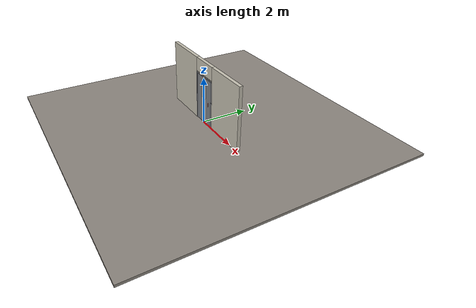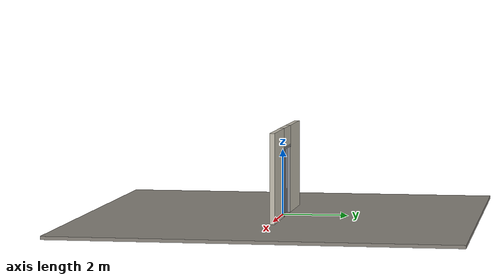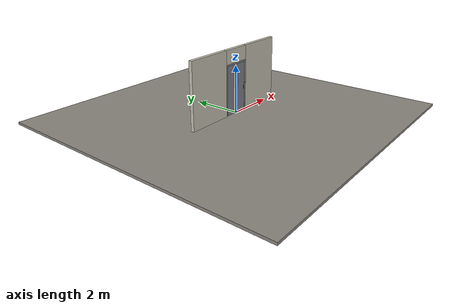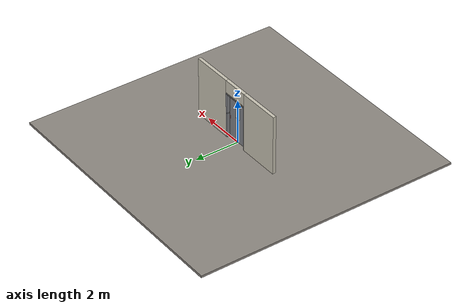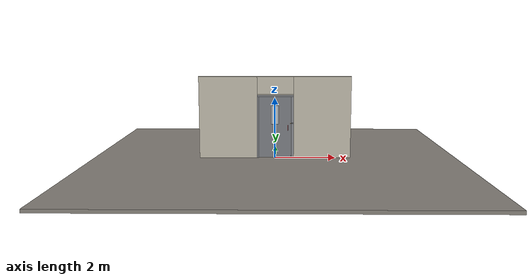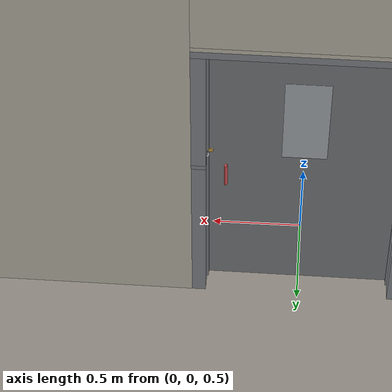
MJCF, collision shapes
<?xml version="1.0" ?>
<mujoco model="db0922_swing_single_full">
  <compiler angle="radian" meshdir="../../hardware" texturedir="../../textures" autolimits="true" inertiafromgeom="false"/>
  <option timestep="0.002" integrator="implicitfast" cone="elliptic" impratio="10" noslip_iterations="3">
    <flag multiccd="enable"/>
  </option>
  <size memory="16M"/>
  <default>
    <geom condim="4" solref="0.005 1" solimp="0.95 0.99 0.001"/>
    <joint solreflimit="0.005 1" solimplimit="0.95 0.99 0.001"/>
    <tendon solreflimit="0.005 1"/>
    <equality solref="0.002 1"/>
  </default>
  <visual>
    <headlight ambient="0.4 0.4 0.4" diffuse="0.7 0.7 0.7" specular="0.2 0.2 0.2"/>
    <quality shadowsize="4096"/>
    <map znear="0.01" zfar="60"/>
  </visual>
  <asset>
    <mesh name="cyl_face_e9e5036966" file="cyl_face_e9e5036966.obj"/>
    <mesh name="hinge_ad5cafba81" file="hinge_ad5cafba81.obj"/>
    <mesh name="hinge_jamb_9cff33df86" file="hinge_jamb_9cff33df86.obj"/>
    <mesh name="pull_1e5d69a91a" file="pull_1e5d69a91a.obj"/>
    <material name="mat_floor" rgba="0.55 0.53 0.5 1" specular="0.2" shininess="0.15" reflectance="0"/>
    <material name="mat_wall" rgba="0.78 0.76 0.7 1" specular="0.2" shininess="0.1" reflectance="0"/>
    <material name="mat_leaf" rgba="0.5 0.51 0.53 1" specular="0.23" shininess="0.4" reflectance="0.02"/>
    <material name="mat_glass" rgba="0.9 0.93 0.95 0.6" specular="0.2" shininess="0.5" reflectance="0.1"/>
    <material name="mat_hinge" rgba="0.65 0.66 0.68 1" specular="0.74" shininess="0.5" reflectance="0.36"/>
    <material name="mat_op_stainless" rgba="0.75 0.76 0.77 1" specular="0.8" shininess="0.65" reflectance="0.4"/>
    <material name="mat_deadbolt" rgba="0.85 0.66 0.3 1" specular="0.8" shininess="0.75" reflectance="0.4"/>
    <material name="mat_frame" rgba="0.55 0.56 0.58 1" specular="0.8" shininess="0.55" reflectance="0.4"/>
    <texture name="skybox" type="skybox" builtin="gradient" rgb1="0.6 0.7 0.85" rgb2="0.9 0.92 0.95" width="256" height="256"/>
  </asset>
  <worldbody>
    <light name="sun" pos="1.5 -2.5 4" dir="-0.3 0.5 -0.8" directional="true" diffuse="0.8 0.8 0.8" specular="0.3 0.3 0.3" castshadow="true"/>
    <light name="fill" pos="-1.5 2.5 3" dir="0.3 -0.5 -0.7" directional="true" diffuse="0.35 0.35 0.4" castshadow="false"/>
    <camera name="robot_view" pos="0 -2.479687 1.734312" xyaxes="1 0 0 0 0.26963 0.962964" fovy="52"/>
    <camera name="far_view" pos="0 2.604687 1.734312" xyaxes="-1 0 0 0 -0.26963 0.962964" fovy="52"/>
    <camera name="iso" pos="1.932062 -2.072938 2.141063" xyaxes="0.741536 0.670913 0 -0.242917 0.268487 0.932151" fovy="46"/>
    <camera name="detail_handle" pos="0.6085 -0.863 1.296" xyaxes="0.97561 0.219512 0 -0.070934 0.315262 0.94635" fovy="38"/>
    <geom name="floor" type="box" size="6 6 0.05" pos="0 0 -0.05" material="mat_floor" group="0" contype="1" conaffinity="1" friction="0.8 0.005 0.0001" density="2400"/>
    <geom name="wall_left" type="box" size="0.95675 0.0725 1.35" pos="-1.54325 0.0625 1.35" material="mat_wall" group="0" contype="1" conaffinity="1" friction="0.6 0.005 0.0001" density="800"/>
    <geom name="wall_right" type="box" size="0.94175 0.0725 1.35" pos="1.55825 0.0625 1.35" material="mat_wall" group="0" contype="1" conaffinity="1" friction="0.6 0.005 0.0001" density="800"/>
    <geom name="wall_header" type="box" size="0.6015 0.0725 0.2875" pos="0.015 0.0625 2.4125" material="mat_wall" group="0" contype="1" conaffinity="1" friction="0.6 0.005 0.0001" density="800"/>
    <geom name="hinge_0_jamb" type="mesh" mesh="hinge_jamb_9cff33df86" pos="-0.5335 -0.01 0.259" material="mat_hinge" group="1" contype="0" conaffinity="0" density="7850"/>
    <geom name="hinge_1_jamb" type="mesh" mesh="hinge_jamb_9cff33df86" pos="-0.5335 -0.01 1.025" material="mat_hinge" group="1" contype="0" conaffinity="0" density="7850"/>
    <geom name="hinge_2_jamb" type="mesh" mesh="hinge_jamb_9cff33df86" pos="-0.5335 -0.01 1.861" material="mat_hinge" group="1" contype="0" conaffinity="0" density="7850"/>
    <geom name="leaf_deadbolt_strike_b" type="box" size="0.0155 0.003 0.0005" pos="0.536 0 1.1375" quat="-0.5 -0.5 0.5 0.5" material="mat_deadbolt" group="1" contype="0" conaffinity="0" density="7800"/>
    <geom name="leaf_deadbolt_strike_l" type="box" size="0.003 0.0155 0.0005" pos="0.536 0.0125 1.156" quat="-0.5 -0.5 0.5 0.5" material="mat_deadbolt" group="1" contype="0" conaffinity="0" density="7800"/>
    <geom name="leaf_deadbolt_strike_t" type="box" size="0.0155 0.003 0.0005" pos="0.536 0 1.1745" quat="-0.5 -0.5 0.5 0.5" material="mat_deadbolt" group="1" contype="0" conaffinity="0" density="7800"/>
    <geom name="leaf_deadbolt_strike_r" type="box" size="0.003 0.0155 0.0005" pos="0.536 -0.0125 1.156" quat="-0.5 -0.5 0.5 0.5" material="mat_deadbolt" group="1" contype="0" conaffinity="0" density="7800"/>
    <geom name="jamb_hinge" type="box" size="0.025 0.0725 1.0225" pos="-0.5615 0.0625 1.0225" material="mat_frame" group="0" contype="1" conaffinity="1" friction="0.6 0.005 0.0001" density="300"/>
    <geom name="strike_1156_wall_n" type="box" size="0.04 0.06275 0.0155" pos="0.5765 0.07225 1.156" material="mat_frame" group="0" contype="1" conaffinity="1" friction="0.6 0.005 0.0001" density="300"/>
    <geom name="strike_1156_wall_p" type="box" size="0.0157 0.003 0.0155" pos="0.5522 -0.0125 1.156" material="mat_frame" group="0" contype="1" conaffinity="1" friction="0.6 0.005 0.0001" density="300"/>
    <geom name="strike_1156_back" type="box" size="0.0253 0.0095 0.0155" pos="0.5912 0 1.156" material="mat_frame" group="0" contype="1" conaffinity="1" friction="0.6 0.005 0.0001" density="300"/>
    <geom name="jamb_strike_0" type="box" size="0.04 0.0725 0.57025" pos="0.5765 0.0625 0.57025" material="mat_frame" group="0" contype="1" conaffinity="1" friction="0.6 0.005 0.0001" density="300"/>
    <geom name="jamb_strike_1" type="box" size="0.04 0.0725 0.43675" pos="0.5765 0.0625 1.60825" material="mat_frame" group="0" contype="1" conaffinity="1" friction="0.6 0.005 0.0001" density="300"/>
    <geom name="jamb_head" type="box" size="0.6015 0.0725 0.025" pos="0.015 0.0625 2.07" material="mat_frame" group="0" contype="1" conaffinity="1" friction="0.6 0.005 0.0001" density="300"/>
    <geom name="head_stud" type="box" size="0.6015 0.0725 0.015" pos="0.015 0.0625 2.11" material="mat_wall" group="0" contype="1" conaffinity="1" friction="0.6 0.005 0.0001" density="500"/>
    <geom name="stop_hinge" type="box" size="0.0055 0.016 1.0225" pos="-0.531 0.0195 1.0225" material="mat_frame" group="0" contype="1" conaffinity="1" friction="0.6 0.005 0.0001" density="300"/>
    <geom name="stop_strike" type="box" size="0.0055 0.016 0.56425" pos="0.531 0.0195 0.56425" material="mat_frame" group="0" contype="1" conaffinity="1" friction="0.6 0.005 0.0001" density="300"/>
    <geom name="stop_strike_1" type="box" size="0.0055 0.016 0.43075" pos="0.531 0.0195 1.61425" material="mat_frame" group="0" contype="1" conaffinity="1" friction="0.6 0.005 0.0001" density="300"/>
    <geom name="stop_head" type="box" size="0.5365 0.016 0.0055" pos="0 0.0195 2.0395" material="mat_frame" group="0" contype="1" conaffinity="1" friction="0.6 0.005 0.0001" density="300"/>
    <site name="approach_point" pos="0 -1.5 0" quat="1 0 0 0" size="0.05" rgba="0.2 0.9 0.2 0.5" group="4"/>
    <site name="goal_point" pos="0 1.5 0" quat="1 0 0 0" size="0.05" rgba="0.2 0.9 0.2 0.5" group="4"/>
    <site name="door_plane_center" pos="0 0 1.0225" quat="1 0 0 0" size="0.02" rgba="0.2 0.9 0.2 0.5" group="4"/>
    <body name="leaf" pos="-0.5365 0 0">
      <inertial pos="0.537474 -0.000075 1.02522" mass="99.019182" quat="0.500027 -0.499869 -0.500127 -0.499977" diaginertia="9.617544356 33.780422228 43.391232283"/>
      <joint name="leaf_hinge" type="hinge" axis="0 0 -1" pos="0.003 -0.01 0" limited="true" range="0 1.570796" damping="0.525663" frictionloss="0.642982" armature="0.02"/>
      <geom name="leaf_slab" type="box" size="0.5335 0.003 1.016" pos="0.5365 0 1.025" material="mat_leaf" group="0" contype="1" conaffinity="1" friction="0.45 0.005 0.0001" density="1"/>
      <geom name="leaf_glass_0" type="box" size="0.125 0.0038 0.3048" pos="0.5365 0 1.4314" material="mat_glass" group="1" contype="0" conaffinity="0" density="1"/>
      <geom name="hinge_0" type="mesh" mesh="hinge_ad5cafba81" pos="0.003 -0.01 0.259" material="mat_hinge" group="1" contype="0" conaffinity="0" density="7850"/>
      <geom name="hinge_1" type="mesh" mesh="hinge_ad5cafba81" pos="0.003 -0.01 1.025" material="mat_hinge" group="1" contype="0" conaffinity="0" density="7850"/>
      <geom name="hinge_2" type="mesh" mesh="hinge_ad5cafba81" pos="0.003 -0.01 1.861" material="mat_hinge" group="1" contype="0" conaffinity="0" density="7850"/>
      <geom name="leaf_pull_n" type="mesh" mesh="pull_1e5d69a91a" pos="0.965 -0.003 1.016" quat="0.707107 0.707107 0 0" material="mat_op_stainless" group="1" contype="0" conaffinity="0" density="3000"/>
      <geom name="leaf_pull_col_n" type="capsule" size="0.0095 0.08" pos="0.965 -0.063 1.016" material="mat_op_stainless" group="3" contype="1" conaffinity="1" rgba="0.8 0.3 0.3 0.25" friction="0.7 0.01 0.0001" density="3000"/>
      <geom name="leaf_pull_p" type="mesh" mesh="pull_1e5d69a91a" pos="0.965 0.003 1.016" quat="-0.707107 0.707107 0 0" material="mat_op_stainless" group="1" contype="0" conaffinity="0" density="3000"/>
      <geom name="leaf_pull_col_p" type="capsule" size="0.0095 0.08" pos="0.965 0.063 1.016" material="mat_op_stainless" group="3" contype="1" conaffinity="1" rgba="0.8 0.3 0.3 0.25" friction="0.7 0.01 0.0001" density="3000"/>
      <geom name="leaf_deadbolt_faceplate" type="box" size="0.0006 0.001 0.0245" pos="1.0694 0 1.156" material="mat_deadbolt" group="1" contype="0" conaffinity="0" density="8500"/>
      <geom name="leaf_deadbolt_cylinder_face" type="mesh" mesh="cyl_face_e9e5036966" pos="1.005 -0.003 1.156" quat="0.707107 0.707107 0 0" material="mat_deadbolt" group="1" contype="0" conaffinity="0" density="7100"/>
      <site name="leaf_pull_grip_n" pos="0.965 -0.063 1.016" quat="1 0 0 0" size="0.012" rgba="0.2 0.9 0.2 0.5" group="4"/>
      <site name="leaf_pull_grip_p" pos="0.965 0.063 1.016" quat="1 0 0 0" size="0.012" rgba="0.2 0.9 0.2 0.5" group="4"/>
      <site name="leaf_edge_mid" pos="1.07 0 1.016" quat="1 0 0 0" size="0.02" rgba="0.2 0.9 0.2 0.5" group="4"/>
      <body name="leaf_deadbolt" pos="1.07 0 1.156">
        <inertial pos="-0.0023 0 0" mass="0.18836" quat="0 0 0.707107 0.707107" diaginertia="0.000013829 0.000052194 0.000057986"/>
        <geom name="leaf_deadbolt_box" type="box" size="0.0277 0.008 0.0125" pos="-0.0023 0 0" material="mat_deadbolt" group="0" contype="1" conaffinity="1" friction="0.3 0.005 0.0001" density="8500"/>
      </body>
    </body>
  </worldbody>
  <sensor>
    <jointpos name="leaf_hinge_pos" joint="leaf_hinge"/>
    <jointvel name="leaf_hinge_vel" joint="leaf_hinge"/>
  </sensor>
</mujoco>
